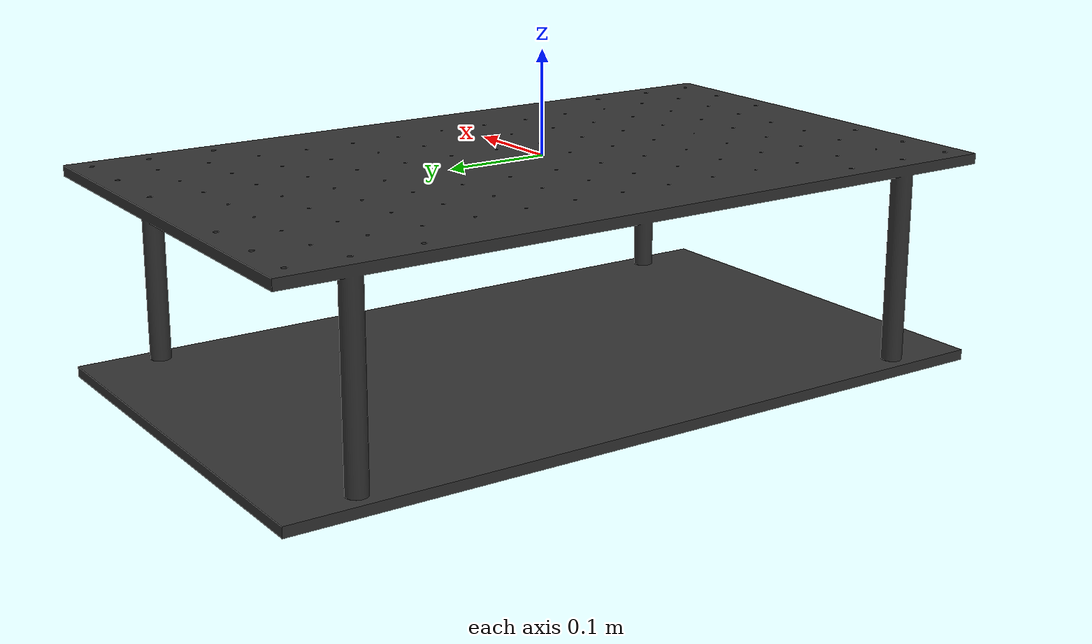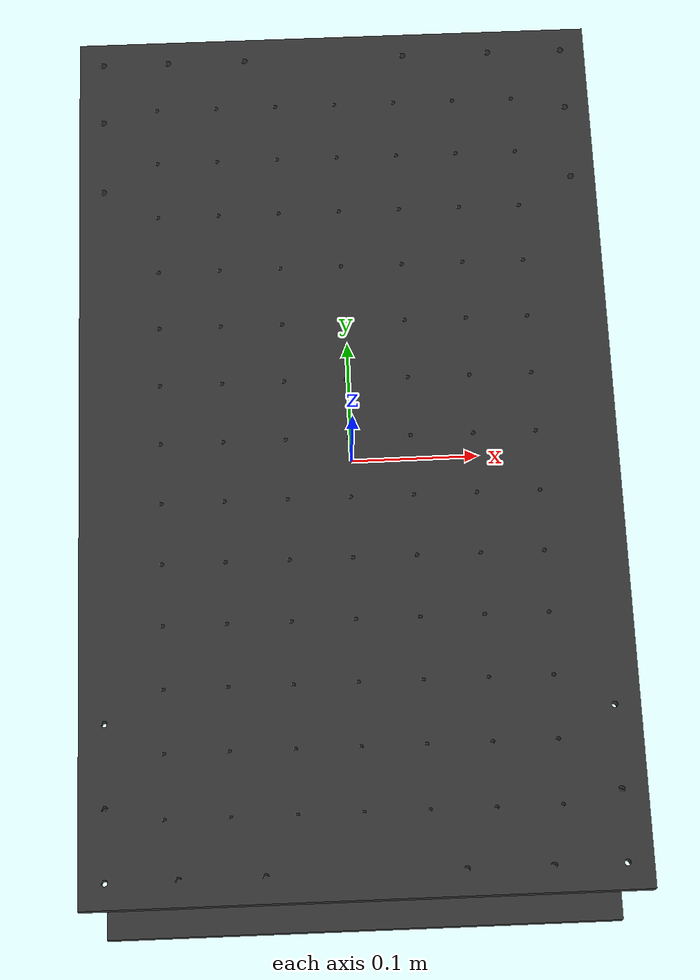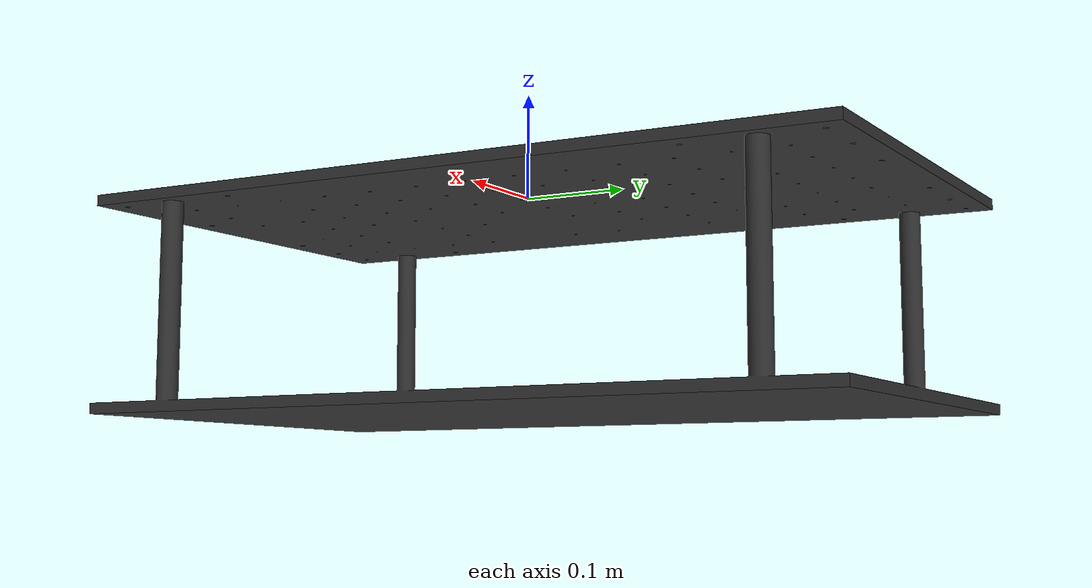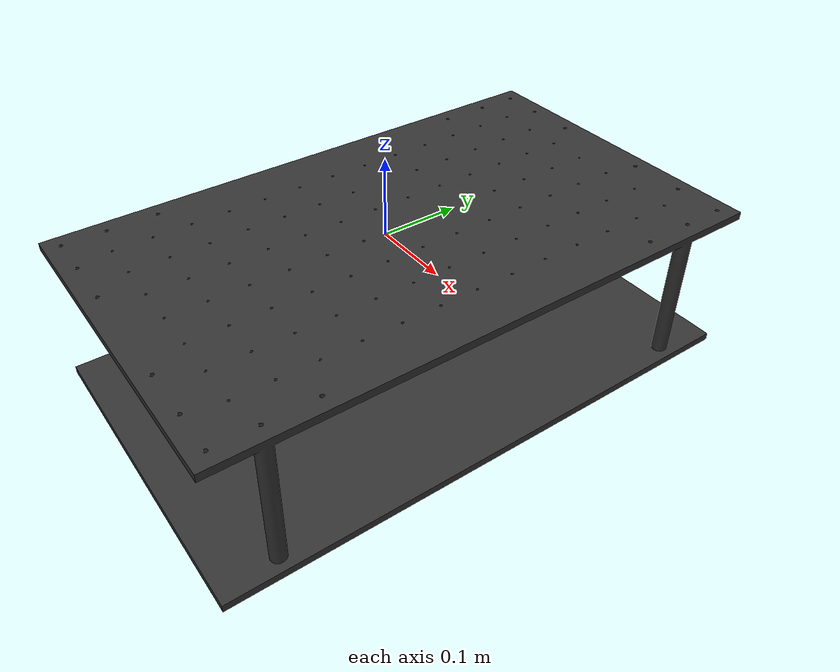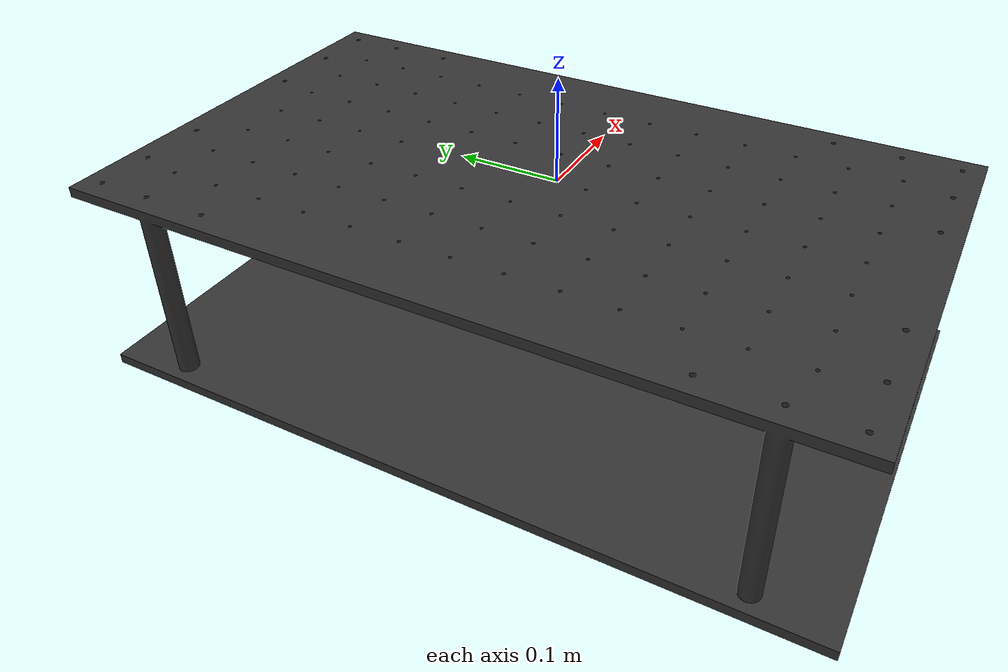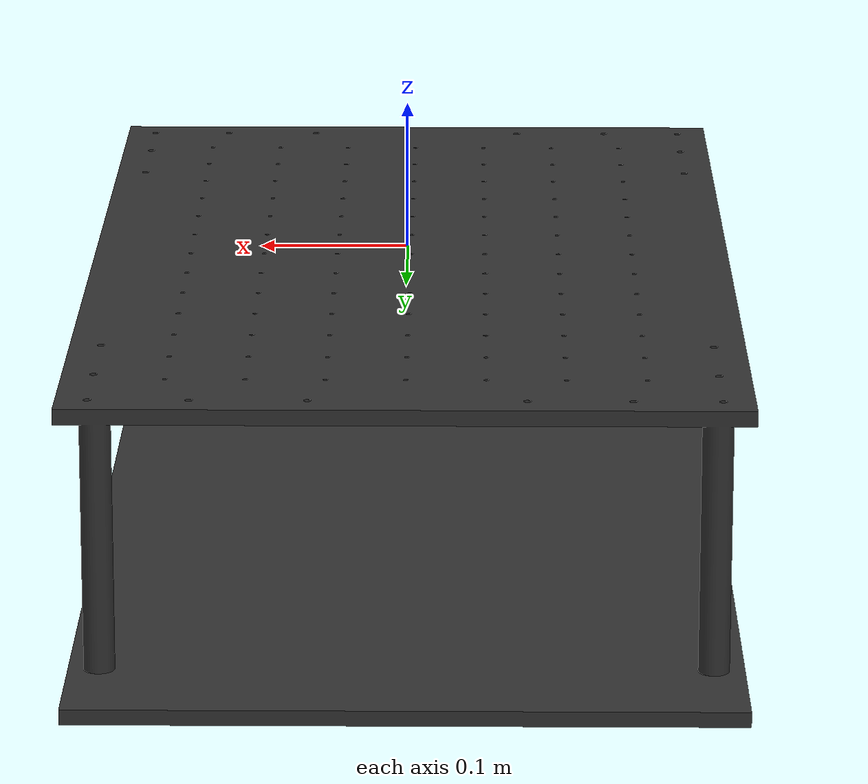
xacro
<?xml version="1.0"?>
<robot name="ttable_env" xmlns:xacro="http://www.ros.org/wiki/xacro">

  <material name="mid_gray">
    <color rgba="0.55 0.55 0.55 1.0"/>
  </material>
  <material name="dark_gray">
    <color rgba="0.20 0.20 0.20 1.0"/>
  </material>
  <material name="collision_red">
    <color rgba="1.0 0.0 0.0 1.0"/>
  </material>

  <link name="ttable_link"/>

  <link name="ttable_top">
    <visual>
      <origin xyz="-0.815 -0.75 -0.955" rpy="0 0 0"/>
      <geometry>
        <mesh filename="package://franka_kistar_bringup/meshes/table/table.STL" scale="0.001 0.001 0.001"/>
      </geometry>
      <material name="dark_gray"/>
    </visual>

    <collision>
      <origin xyz="0.05 0. -0.35" rpy="0 0 0"/>
      <geometry>
        <box size="0.5 0.75 0.7"/>
      </geometry>
      <material name="collision_red"/>
    </collision>
  </link>

  <joint name="ttable_top_joint" type="fixed">
    <parent link="ttable_link"/>
    <child link="ttable_top"/>
    <origin xyz="0 0 0" rpy="0 0 0"/>
  </joint>

</robot>
